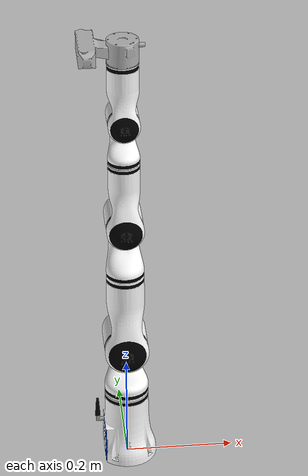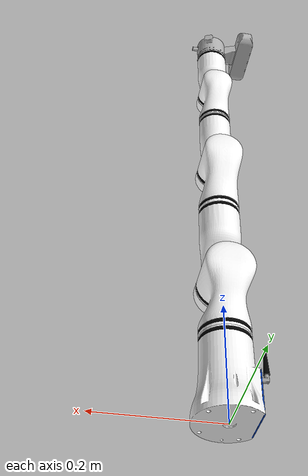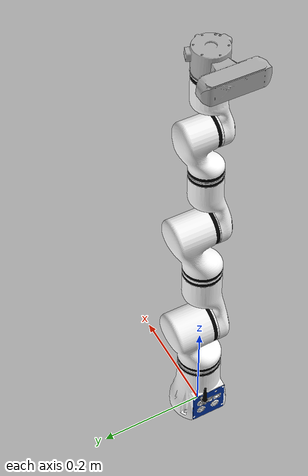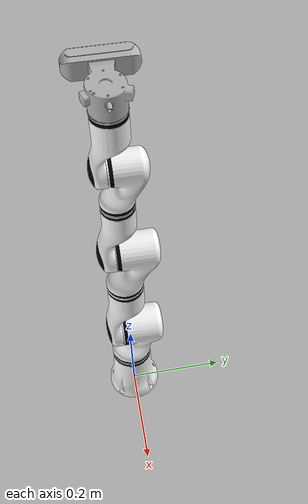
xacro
<?xml version="1.0"?>
<robot name="rm65" xmlns:xacro="http://www.ros.org/wiki/xacro">

	<xacro:arg name="ros2_control_hardware_type" default="mock_components"/>

	<link name="world"/>

	<joint name="world_fixed" type="fixed">
		<parent link="world"/>
		<child link="base_link"/>
		<origin/>
	</joint>

	<!-- 直接include robot.xacro -->
	<xacro:include filename="$(find rm65_description)/xacro/robot.xacro"/>
	<xacro:include filename="$(find rm65_description)/xacro/ros2_control/arm.xacro"/>

	<ros2_control name="rm65_system" type="system">
		<hardware>
			<xacro:if value="${'$(arg ros2_control_hardware_type)' == 'gz'}">
				<plugin>gz_ros2_control/GazeboSimSystem</plugin>
			</xacro:if>
			<xacro:if value="${'$(arg ros2_control_hardware_type)' == 'mock_components'}">
				<plugin>mock_components/GenericSystem</plugin>
			</xacro:if>
			<xacro:if value="${'$(arg ros2_control_hardware_type)' == 'isaac'}">
				<plugin>topic_based_ros2_control/TopicBasedSystem</plugin>
				<param name="joint_commands_topic">/isaac/joint_command</param>
				<param name="joint_states_topic">/isaac/joint_states</param>
				<param name="sum_wrapped_joint_states">false</param>
				<param name="initialize_commands_from_state">true</param>
			</xacro:if>
			<xacro:if value="${'$(arg ros2_control_hardware_type)' == 'real'}">
				<plugin>topic_based_ros2_control/TopicBasedSystem</plugin>
				<param name="joint_commands_topic">/joint_command_robot</param>
				<param name="joint_states_topic">/joint_states_robot</param>
				<param name="sum_wrapped_joint_states">false</param>
				<param name="initialize_commands_from_state">true</param>
			</xacro:if>
		</hardware>

		<!-- 机械臂接口 -->
		<xacro:rm65_interfaces name=""/>

		<!-- 夹爪接口定义 -->
		<xacro:if value="${'$(arg type)' == 'EG2-4C2'}">
			<xacro:include filename="$(find inspire_description)/xacro/ros2_control/EG2-4C2.xacro"/>
			<xacro:eg2_4c2_interfaces name=""/>
		</xacro:if>

	</ros2_control>

	<!-- Gazebo plugin configuration -->
	<xacro:arg name="gazebo" default="false"/>
	<xacro:if value="$(arg gazebo)">
		<gazebo>
			<plugin filename="gz_ros2_control-system" name="gz_ros2_control::GazeboSimROS2ControlPlugin">
				<parameters>$(find rm65_description)/config/ros2_control/ros2_controllers.yaml</parameters>
			</plugin>
		</gazebo>
	</xacro:if>
</robot>

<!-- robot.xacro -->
<robot name="rm65" xmlns:xacro="http://ros.org/wiki/xacro">
  <xacro:arg name="gripper_type" default="empty"/>

  <xacro:include filename="$(find rm65_description)/xacro/arm.xacro"/>
  <xacro:rm65 name=""/>

  <xacro:include filename="$(find rm65_description)/xacro/grippers.xacro"/>
</robot>

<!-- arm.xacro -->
<robot name="rm65" xmlns:xacro="http://www.ros.org/wiki/xacro">
  <xacro:macro name="rm65" params="name direction:=''" >
    <xacro:property name="prefix" value="${name + '_' if name else ''}"/>
    <!-- Define constants -->
    <xacro:property name="mesh_path" value="file://$(find rm65_description)/meshes/"/>

    <!-- Macro for visual and collision elements -->
    <xacro:macro name="visual_collision" params="mesh">
      <visual>
        <geometry>
          <mesh filename="${mesh_path}${mesh}"/>
        </geometry>
      </visual>
      <collision>
        <geometry>
          <mesh filename="${mesh_path}${mesh}"/>
        </geometry>
      </collision>
    </xacro:macro>

    <link name="${prefix}base_link">
      <inertial>
        <!-- Default configuration -->
        <xacro:if value="${direction != 'l' and direction != 'r'}">
          <origin xyz="-0.00049840293879996 -5.19350047653785E-05 0.0600202841321701"/>
          <mass value="0.838885281114303"/>
          <inertia
              ixx="0.00172321229549441"
              ixy="3.09076898315635E-06"
              ixz="-3.7922126488402E-05"
              iyy="0.00170514762495823"
              iyz="1.38793642017112E-06"
              izz="0.000901589030906685"/>
        </xacro:if>
        <!-- Left arm configuration -->
        <xacro:if value="${direction == 'l'}">
          <origin xyz="-3.58E-05 -0.0056915 0.024464"/>
          <mass value="0.23441"/>
          <inertia
              ixx="0.00027369"
              ixy="6.5702E-08"
              ixz="2.7812E-09"
              iyy="0.000264"
              iyz="-1.6355E-06"
              izz="0.00036679"/>
        </xacro:if>
        <!-- Right arm configuration -->
        <xacro:if value="${direction == 'r'}">
          <origin xyz="-4.8022E-05 0.0056915 0.024715"/>
          <mass value="0.23441"/>
          <inertia
              ixx="0.00027369"
              ixy="6.5702E-08"
              ixz="-3.2599E-09"
              iyy="0.000264"
              iyz="1.6355E-06"
              izz="0.00036679"/>
        </xacro:if>
      </inertial>
      <xacro:if value="${direction == 'l'}">
        <xacro:visual_collision mesh="base_link_aidal.obj"/>
      </xacro:if>
      <xacro:if value="${direction == 'r'}">
        <xacro:visual_collision mesh="base_link_aidal.obj"/>
      </xacro:if>
      <xacro:if value="${direction != 'l' and direction != 'r'}">
        <xacro:visual_collision mesh="base_link.dae"/>
      </xacro:if>
    </link>
    <link name="${prefix}link1">
      <inertial>
        <origin xyz="-2.9675E-07 0.021107 -0.025188"/>
        <mass value="0.59353"/>
        <inertia
            ixx="0.0012661"
            ixy="-5.363E-09"
            ixz="-2.109E-09"
            iyy="0.0011816"
            iyz="-0.00021118"
            izz="0.00056131"/>
      </inertial>
      <xacro:visual_collision mesh="link1.dae"/>
    </link>
    <link name="${prefix}link2">
      <inertial>
        <origin xyz="0.15226 2.3916E-07 -0.0062027"/>
        <mass value="0.86416"/>
        <inertia
            ixx="0.00063253"
            ixy="2.0103E-09"
            ixz="0.00042162"
            iyy="0.0020527"
            iyz="3.5857E-09"
            izz="0.0019528"/>
      </inertial>
      <xacro:visual_collision mesh="link2.dae"/>
    </link>
    <link name="${prefix}link3">
      <inertial>
        <origin xyz="4.7194E-06 -0.059592 0.010268"/>
        <mass value="0.28963"/>
        <inertia
            ixx="0.00063737"
            ixy="-6.2601E-08"
            ixz="-3.5046E-08"
            iyy="0.00015649"
            iyz="-0.00014461"
            izz="0.00061418"/>
      </inertial>
      <xacro:visual_collision mesh="link3.dae"/>
    </link>
    <link name="${prefix}link4">
      <inertial>
        <origin xyz="2.9186E-07 -0.018042 -0.02154"/>
        <mass value="0.23942"/>
        <inertia
            ixx="0.00028595"
            ixy="-2.3562E-09"
            ixz="1.3938E-09"
            iyy="0.00026273"
            iyz="4.424E-05"
            izz="0.0001199"/>
      </inertial>
      <xacro:visual_collision mesh="link4.dae"/>
    </link>
    <link name="${prefix}link5">
      <inertial>
        <origin xyz="4.2301E-06 -0.059381 0.0070671"/>
        <mass value="0.21879"/>
        <inertia
            ixx="0.00035053"
            ixy="-2.8554E-08"
            ixz="-1.67E-08"
            iyy="0.00010492"
            iyz="-7.824E-05"
            izz="0.00033447"/>
      </inertial>
      <xacro:visual_collision mesh="link5.dae"/>
    </link>
    <link name="${prefix}link6">
      <inertial>
        <origin xyz="0.028764 -5.1529E-06 0.025085"/>
        <mass value="0.22147"/>
        <inertia
            ixx="0.0001376"
            ixy="-5.7488E-08"
            ixz="-1.6634E-05"
            iyy="0.00026855"
            iyz="1.7799E-08"
            izz="0.00035277"/>
      </inertial>
      <xacro:visual_collision mesh="link6.obj"/>
    </link>

    <joint name="${prefix}joint1" type="revolute">
      <!-- Default configuration -->
      <xacro:if value="${direction != 'l' and direction != 'r'}">
        <origin xyz="0 0 0.2405"/>
      </xacro:if>
      <!-- Left arm configuration -->
      <xacro:if value="${direction == 'l'}">
        <origin xyz="0 0 0.187" rpy="0 0 3.1415"/>
      </xacro:if>
      <!-- Right arm configuration -->
      <xacro:if value="${direction == 'r'}">
        <origin xyz="0 0 0.187" rpy="0 0 0"/>
      </xacro:if>
      <parent link="${prefix}base_link"/>
      <child link="${prefix}link1"/>
      <axis xyz="0 0 1"/>
      <limit lower="-3.11" upper="3.11" effort="60" velocity="3.14"/>
    </joint>
    <joint name="${prefix}joint2" type="revolute">
      <origin xyz="0 0 0" rpy="1.5708 -1.5708 0"/>
      <parent link="${prefix}link1"/>
      <child link="${prefix}link2"/>
      <axis xyz="0 0 1"/>
      <limit lower="-2.27" upper="2.27" effort="60" velocity="3.14"/>
    </joint>
    <joint name="${prefix}joint3" type="revolute">
      <origin xyz="0.256 0 0" rpy="0 0 1.5708"/>
      <parent link="${prefix}link2"/>
      <child link="${prefix}link3"/>
      <axis xyz="0 0 1"/>
      <limit lower="-2.36" upper="2.36" effort="30" velocity="3.925"/>
    </joint>
    <joint name="${prefix}joint4" type="revolute">
      <origin xyz="0 -0.21 -0.00030007" rpy="1.5708 0 0"/>
      <parent link="${prefix}link3"/>
      <child link="${prefix}link4"/>
      <axis xyz="0 0 1"/>
      <limit lower="-3.11" upper="3.11" effort="10" velocity="3.925"/>
    </joint>
    <joint name="${prefix}joint5" type="revolute">
      <origin xyz="0 0 0" rpy="-1.5708 0 0"/>
      <parent link="${prefix}link4"/>
      <child link="${prefix}link5"/>
      <axis xyz="0 0 1"/>
      <limit lower="-2.23" upper="2.23" effort="10" velocity="3.925"/>
    </joint>
    <joint name="${prefix}joint6" type="revolute">
      <xacro:if value="${direction == 'r'}">
        <origin xyz="0 -0.115 0" rpy="-1.5708 3.14159 0"/>
      </xacro:if>
      <xacro:unless value="${direction == 'r'}">
        <origin xyz="0 -0.115 0" rpy="-1.5708 0 0"/>
      </xacro:unless>
      <parent link="${prefix}link5"/>
      <child link="${prefix}link6"/>
      <axis xyz="0 0 -1"/>
      <limit lower="-6.28" upper="6.28" effort="10" velocity="3.925"/>
    </joint>

    <!-- End effector link for gripper attachment -->
    <link name="${prefix}link6_ee"/>
    <joint name="${prefix}ee_joint" type="fixed">
      <origin xyz="0 0 -0.043" rpy="3.14159 0 1.5708"/>
      <parent link="${prefix}link6"/>
      <child link="${prefix}link6_ee"/>
    </joint>
  </xacro:macro>
</robot>
